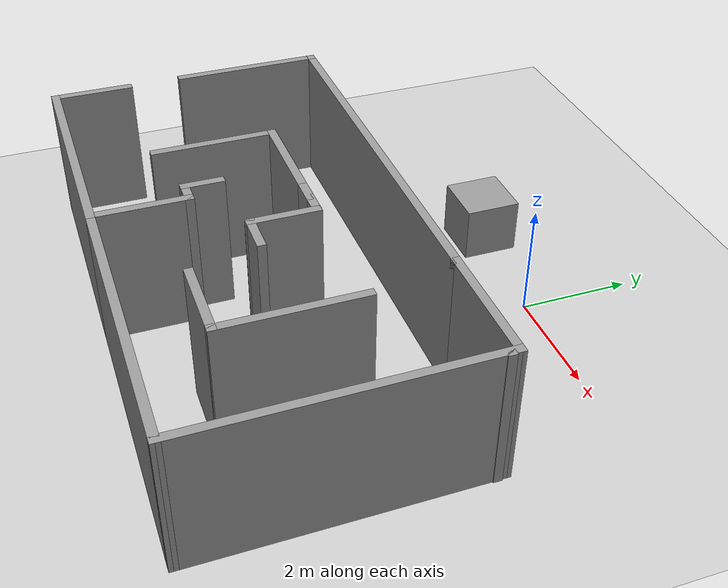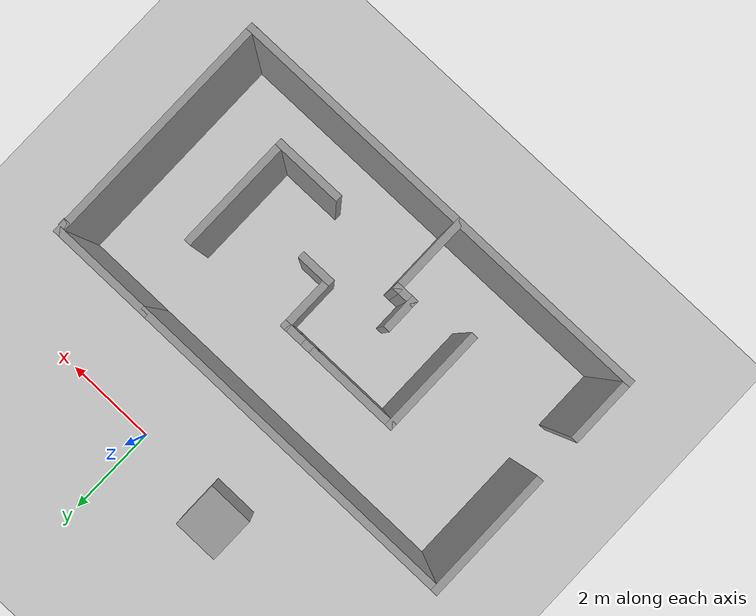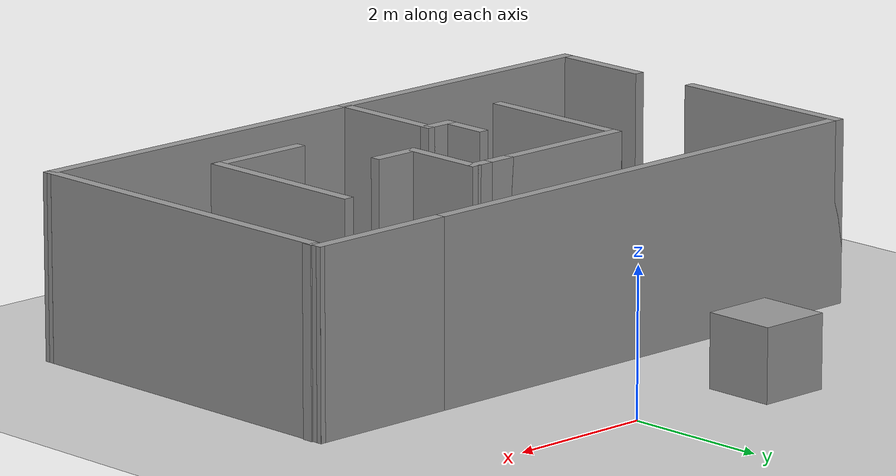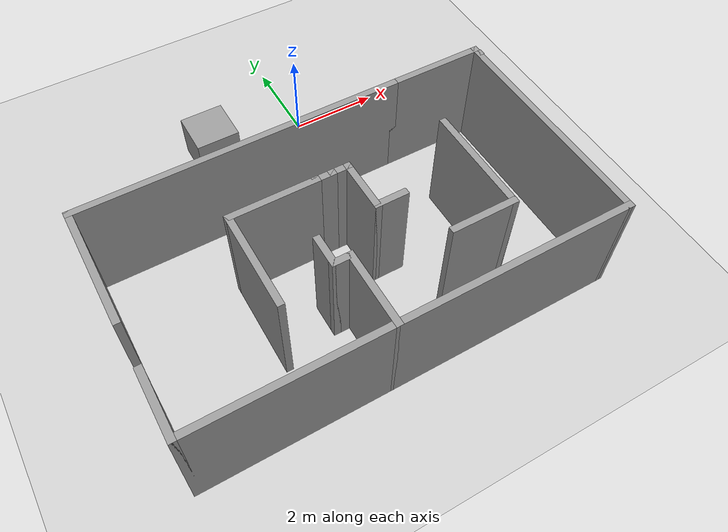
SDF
<sdf version="1.7">
 <world name="default">
  <light name="sun" type="directional">
   <pose>0 0 10 0 -0 0</pose>
   <diffuse>0.8 0.8 0.8 1</diffuse>
   <specular>0.2 0.2 0.2 1</specular>
   <attenuation>
    <range>1000</range>
    <constant>0.9</constant>
    <linear>0.01</linear>
    <quadratic>0.001</quadratic>
   </attenuation>
   <direction>-0.5 0.1 -0.9</direction>
   <spot><inner_angle>0</inner_angle><outer_angle>0</outer_angle><falloff>0</falloff></spot>
  </light>
  <model name="ground_plane">
   <static>1</static>
   <link name="link">
    <collision name="collision">
     <geometry><plane><normal>0 0 1</normal><size>100 100</size></plane></geometry>
     <surface>
      <contact><collide_bitmask>65535</collide_bitmask></contact>
      <friction><ode><mu>100</mu><mu2>50</mu2></ode></friction>
     </surface>
    </collision>
    <visual name="visual">
     <cast_shadows>0</cast_shadows>
     <geometry><plane><normal>0 0 1</normal><size>100 100</size></plane></geometry>
     <material>
      <script><uri>file://media/materials/scripts/gazebo.material</uri><name>Gazebo/Grey</name></script>
     </material>
    </visual>
   </link>
  </model>
  <gravity>0 0 -9.8</gravity>
  <magnetic_field>6e-06 2.3e-05 -4.2e-05</magnetic_field>
  <atmosphere type="adiabatic"/>
  <physics type="ode">
   <max_step_size>0.001</max_step_size>
   <real_time_factor>1</real_time_factor>
   <real_time_update_rate>1000</real_time_update_rate>
  </physics>
  <scene><ambient>0.4 0.4 0.4 1</ambient><background>0.7 0.7 0.7 1</background><shadows>1</shadows></scene>
  <spherical_coordinates>
   <surface_model>EARTH_WGS84</surface_model>
   <latitude_deg>0</latitude_deg>
   <longitude_deg>0</longitude_deg>
   <elevation>0</elevation>
   <heading_deg>0</heading_deg>
  </spherical_coordinates>
  <model name="unit_box">
   <pose>-2.17141 0.126304 0.5 0 -0 5e-06</pose>
   <link name="link">
    <inertial>
     <mass>1</mass>
     <inertia>
      <ixx>0.166667</ixx>
      <ixy>0</ixy>
      <ixz>0</ixz>
      <iyy>0.166667</iyy>
      <iyz>0</iyz>
      <izz>0.166667</izz>
     </inertia>
    </inertial>
    <collision name="collision"><geometry><box><size>1 1 1</size></box></geometry></collision>
    <visual name="visual">
     <geometry><box><size>1 1 1</size></box></geometry>
     <material>
      <script><name>Gazebo/Grey</name><uri>file://media/materials/scripts/gazebo.material</uri></script>
     </material>
    </visual>
   </link>
  </model>
  <model name="map">
   <pose>-1.14985 -3.56765 0 0 -0 0</pose>
   <link name="Wall_0">
    <collision name="Wall_0_Collision">
     <geometry><box><size>2.75 0.15 2.5</size></box></geometry>
     <pose>0 0 1.25 0 -0 0</pose>
    </collision>
    <visual name="Wall_0_Visual">
     <pose>0 0 1.25 0 -0 0</pose>
     <geometry><box><size>2.75 0.15 2.5</size></box></geometry>
     <material>
      <script><uri>file://media/materials/scripts/gazebo.material</uri><name>Gazebo/Grey</name></script>
      <ambient>1 1 1 1</ambient>
     </material>
     <meta><layer>0</layer></meta>
    </visual>
    <pose>-4.61015 0.20765 0 0 -0 -1.5708</pose>
   </link>
   <link name="Wall_10">
    <collision name="Wall_10_Collision">
     <geometry><box><size>4.25 0.15 2.5</size></box></geometry>
     <pose>0 0 1.25 0 -0 0</pose>
    </collision>
    <visual name="Wall_10_Visual">
     <pose>0 0 1.25 0 -0 0</pose>
     <geometry><box><size>4.25 0.15 2.5</size></box></geometry>
     <material>
      <script><uri>file://media/materials/scripts/gazebo.material</uri><name>Gazebo/Grey</name></script>
      <ambient>1 1 1 1</ambient>
     </material>
     <meta><layer>0</layer></meta>
    </visual>
    <pose>-2.54015 -3.49235 0 0 -0 0</pose>
   </link>
   <link name="Wall_11">
    <collision name="Wall_11_Collision">
     <geometry><box><size>1.75 0.15 2.5</size></box></geometry>
     <pose>0 0 1.25 0 -0 0</pose>
    </collision>
    <visual name="Wall_11_Visual">
     <pose>0 0 1.25 0 -0 0</pose>
     <geometry><box><size>1.75 0.15 2.5</size></box></geometry>
     <material>
      <script><uri>file://media/materials/scripts/gazebo.material</uri><name>Gazebo/Grey</name></script>
      <ambient>1 1 1 1</ambient>
     </material>
     <meta><layer>0</layer></meta>
    </visual>
    <pose>-0.490149 -2.69235 0 0 -0 1.5708</pose>
   </link>
   <link name="Wall_12">
    <collision name="Wall_12_Collision">
     <geometry><box><size>0.5 0.15 2.5</size></box></geometry>
     <pose>0 0 1.25 0 -0 0</pose>
    </collision>
    <visual name="Wall_12_Visual">
     <pose>0 0 1.25 0 -0 0</pose>
     <geometry><box><size>0.5 0.15 2.5</size></box></geometry>
     <material>
      <script><uri>file://media/materials/scripts/gazebo.material</uri><name>Gazebo/Grey</name></script>
      <ambient>1 1 1 1</ambient>
     </material>
     <meta><layer>0</layer></meta>
    </visual>
    <pose>-0.665149 -1.89235 0 0 -0 3.14159</pose>
   </link>
   <link name="Wall_13">
    <collision name="Wall_13_Collision">
     <geometry><box><size>0.75 0.15 2.5</size></box></geometry>
     <pose>0 0 1.25 0 -0 0</pose>
    </collision>
    <visual name="Wall_13_Visual">
     <pose>0 0 1.25 0 -0 0</pose>
     <geometry><box><size>0.75 0.15 2.5</size></box></geometry>
     <material>
      <script><uri>file://media/materials/scripts/gazebo.material</uri><name>Gazebo/Grey</name></script>
      <ambient>1 1 1 1</ambient>
     </material>
     <meta><layer>0</layer></meta>
    </visual>
    <pose>-0.840149 -1.59235 0 0 -0 1.5708</pose>
   </link>
   <link name="Wall_15">
    <collision name="Wall_15_Collision">
     <geometry><box><size>0.5 0.15 2.5</size></box></geometry>
     <pose>0 0 1.25 0 -0 0</pose>
    </collision>
    <visual name="Wall_15_Visual">
     <pose>0 0 1.25 0 -0 0</pose>
     <geometry><box><size>0.5 0.15 2.5</size></box></geometry>
     <material>
      <script><uri>file://media/materials/scripts/gazebo.material</uri><name>Gazebo/Grey</name></script>
      <ambient>1 1 1 1</ambient>
     </material>
     <meta><layer>0</layer></meta>
    </visual>
    <pose>-0.025149 -0.04235 0 0 -0 0</pose>
   </link>
   <link name="Wall_16">
    <collision name="Wall_16_Collision">
     <geometry><box><size>0.5 0.15 2.5</size></box></geometry>
     <pose>0 0 1.25 0 -0 0</pose>
    </collision>
    <visual name="Wall_16_Visual">
     <pose>0 0 1.25 0 -0 0</pose>
     <geometry><box><size>0.5 0.15 2.5</size></box></geometry>
     <material>
      <script><uri>file://media/materials/scripts/gazebo.material</uri><name>Gazebo/Grey</name></script>
      <ambient>1 1 1 1</ambient>
     </material>
     <meta><layer>0</layer></meta>
    </visual>
    <pose>0.324851 -0.04235 0 0 -0 0</pose>
   </link>
   <link name="Wall_17">
    <collision name="Wall_17_Collision">
     <geometry><box><size>1.25 0.15 2.5</size></box></geometry>
     <pose>0 0 1.25 0 -0 0</pose>
    </collision>
    <visual name="Wall_17_Visual">
     <pose>0 0 1.25 0 -0 0</pose>
     <geometry><box><size>1.25 0.15 2.5</size></box></geometry>
     <material>
      <script><uri>file://media/materials/scripts/gazebo.material</uri><name>Gazebo/Grey</name></script>
      <ambient>1 1 1 1</ambient>
     </material>
     <meta><layer>0</layer></meta>
    </visual>
    <pose>0.499851 -0.59235 0 0 -0 -1.5708</pose>
   </link>
   <link name="Wall_18">
    <collision name="Wall_18_Collision">
     <geometry><box><size>0.75 0.15 2.5</size></box></geometry>
     <pose>0 0 1.25 0 -0 0</pose>
    </collision>
    <visual name="Wall_18_Visual">
     <pose>0 0 1.25 0 -0 0</pose>
     <geometry><box><size>0.75 0.15 2.5</size></box></geometry>
     <material>
      <script><uri>file://media/materials/scripts/gazebo.material</uri><name>Gazebo/Grey</name></script>
      <ambient>1 1 1 1</ambient>
     </material>
     <meta><layer>0</layer></meta>
    </visual>
    <pose>0.799851 -1.14235 0 0 -0 0</pose>
   </link>
   <link name="Wall_2">
    <collision name="Wall_2_Collision">
     <geometry><box><size>7.25 0.15 2.5</size></box></geometry>
     <pose>0 0 1.25 0 -0 0</pose>
    </collision>
    <visual name="Wall_2_Visual">
     <pose>0 0 1.25 0 -0 0</pose>
     <geometry><box><size>7.25 0.15 2.5</size></box></geometry>
     <material>
      <script><uri>file://media/materials/scripts/gazebo.material</uri><name>Gazebo/Grey</name></script>
      <ambient>1 1 1 1</ambient>
     </material>
     <meta><layer>0</layer></meta>
    </visual>
    <pose>-1.06015 1.50765 0 0 -0 0</pose>
   </link>
   <link name="Wall_21">
    <collision name="Wall_21_Collision">
     <geometry><box><size>1.5 0.15 2.5</size></box></geometry>
     <pose>0 0 1.25 0 -0 0</pose>
    </collision>
    <visual name="Wall_21_Visual">
     <pose>0 0 1.25 0 -0 0</pose>
     <geometry><box><size>1.5 0.15 2.5</size></box></geometry>
     <material>
      <script><uri>file://media/materials/scripts/gazebo.material</uri><name>Gazebo/Grey</name></script>
      <ambient>1 1 1 1</ambient>
     </material>
     <meta><layer>0</layer></meta>
    </visual>
    <pose>2.11485 -2.33235 0 0 -0 0</pose>
   </link>
   <link name="Wall_22">
    <collision name="Wall_22_Collision">
     <geometry><box><size>2.5 0.15 2.5</size></box></geometry>
     <pose>0 0 1.25 0 -0 0</pose>
    </collision>
    <visual name="Wall_22_Visual">
     <pose>0 0 1.25 0 -0 0</pose>
     <geometry><box><size>2.5 0.15 2.5</size></box></geometry>
     <material>
      <script><uri>file://media/materials/scripts/gazebo.material</uri><name>Gazebo/Grey</name></script>
      <ambient>1 1 1 1</ambient>
     </material>
     <meta><layer>0</layer></meta>
    </visual>
    <pose>2.78985 -1.15735 0 0 -0 1.5708</pose>
   </link>
   <link name="Wall_24">
    <collision name="Wall_24_Collision">
     <geometry><box><size>5.25 0.15 2.5</size></box></geometry>
     <pose>0 0 1.25 0 -0 0</pose>
    </collision>
    <visual name="Wall_24_Visual">
     <pose>0 0 1.25 0 -0 0</pose>
     <geometry><box><size>5.25 0.15 2.5</size></box></geometry>
     <material>
      <script><uri>file://media/materials/scripts/gazebo.material</uri><name>Gazebo/Grey</name></script>
      <ambient>1 1 1 1</ambient>
     </material>
     <meta><layer>0</layer></meta>
    </visual>
    <pose>2.05985 -3.49235 0 0 -0 0</pose>
   </link>
   <link name="Wall_26">
    <collision name="Wall_26_Collision">
     <geometry><box><size>0.15 0.15 2.5</size></box></geometry>
     <pose>0 0 1.25 0 -0 0</pose>
    </collision>
    <visual name="Wall_26_Visual">
     <pose>0 0 1.25 0 -0 0</pose>
     <geometry><box><size>0.15 0.15 2.5</size></box></geometry>
     <material>
      <script><uri>file://media/materials/scripts/gazebo.material</uri><name>Gazebo/Grey</name></script>
      <ambient>1 1 1 1</ambient>
     </material>
     <meta><layer>0</layer></meta>
    </visual>
    <pose>4.60985 1.35765 0 0 -0 0</pose>
   </link>
   <link name="Wall_27">
    <collision name="Wall_27_Collision">
     <geometry><box><size>0.15 0.15 2.5</size></box></geometry>
     <pose>0 0 1.25 0 -0 0</pose>
    </collision>
    <visual name="Wall_27_Visual">
     <pose>0 0 1.25 0 -0 0</pose>
     <geometry><box><size>0.15 0.15 2.5</size></box></geometry>
     <material>
      <script><uri>file://media/materials/scripts/gazebo.material</uri><name>Gazebo/Grey</name></script>
      <ambient>1 1 1 1</ambient>
     </material>
     <meta><layer>0</layer></meta>
    </visual>
    <pose>4.60985 1.35765 0 0 -0 0</pose>
   </link>
   <link name="Wall_30">
    <collision name="Wall_30_Collision">
     <geometry><box><size>2.25 0.15 2.5</size></box></geometry>
     <pose>0 0 1.25 0 -0 0</pose>
    </collision>
    <visual name="Wall_30_Visual">
     <pose>0 0 1.25 0 -0 0</pose>
     <geometry><box><size>2.25 0.15 2.5</size></box></geometry>
     <material>
      <script><uri>file://media/materials/scripts/gazebo.material</uri><name>Gazebo/Grey</name></script>
      <ambient>1 1 1 1</ambient>
     </material>
     <meta><layer>0</layer></meta>
    </visual>
    <pose>3.53985 1.50765 0 0 -0 0</pose>
   </link>
   <link name="Wall_31">
    <collision name="Wall_31_Collision">
     <geometry><box><size>5.15004 0.15 2.5</size></box></geometry>
     <pose>0 0 1.25 0 -0 0</pose>
    </collision>
    <visual name="Wall_31_Visual">
     <pose>0 0 1.25 0 -0 0</pose>
     <geometry><box><size>5.15004 0.15 2.5</size></box></geometry>
     <material>
      <script><uri>file://media/materials/scripts/gazebo.material</uri><name>Gazebo/Grey</name></script>
      <ambient>1 1 1 1</ambient>
     </material>
     <meta><layer>0</layer></meta>
    </visual>
    <pose>4.59985 -0.99235 0 0 -0 -1.5668</pose>
   </link>
   <link name="Wall_4">
    <collision name="Wall_4_Collision">
     <geometry><box><size>2.25 0.15 2.5</size></box></geometry>
     <pose>0 0 1.25 0 -0 0</pose>
    </collision>
    <visual name="Wall_4_Visual">
     <pose>0 0 1.25 0 -0 0</pose>
     <geometry><box><size>2.25 0.15 2.5</size></box></geometry>
     <material>
      <script><uri>file://media/materials/scripts/gazebo.material</uri><name>Gazebo/Grey</name></script>
      <ambient>1 1 1 1</ambient>
     </material>
     <meta><layer>0</layer></meta>
    </visual>
    <pose>-2.05015 -1.09235 0 0 -0 -1.5708</pose>
   </link>
   <link name="Wall_6">
    <collision name="Wall_6_Collision">
     <geometry><box><size>2 0.15 2.5</size></box></geometry>
     <pose>0 0 1.25 0 -0 0</pose>
    </collision>
    <visual name="Wall_6_Visual">
     <pose>0 0 1.25 0 -0 0</pose>
     <geometry><box><size>2 0.15 2.5</size></box></geometry>
     <material>
      <script><uri>file://media/materials/scripts/gazebo.material</uri><name>Gazebo/Grey</name></script>
      <ambient>1 1 1 1</ambient>
     </material>
     <meta><layer>0</layer></meta>
    </visual>
    <pose>-1.12515 -0.04235 0 0 -0 0</pose>
   </link>
   <link name="Wall_9">
    <collision name="Wall_9_Collision">
     <geometry><box><size>1.5 0.15 2.5</size></box></geometry>
     <pose>0 0 1.25 0 -0 0</pose>
    </collision>
    <visual name="Wall_9_Visual">
     <pose>0 0 1.25 0 -0 0</pose>
     <geometry><box><size>1.5 0.15 2.5</size></box></geometry>
     <material>
      <script><uri>file://media/materials/scripts/gazebo.material</uri><name>Gazebo/Grey</name></script>
      <ambient>1 1 1 1</ambient>
     </material>
     <meta><layer>0</layer></meta>
    </visual>
    <pose>-4.59015 -2.81735 0 0 -0 -1.5708</pose>
   </link>
   <static>1</static>
  </model>
 </world>
</sdf>
